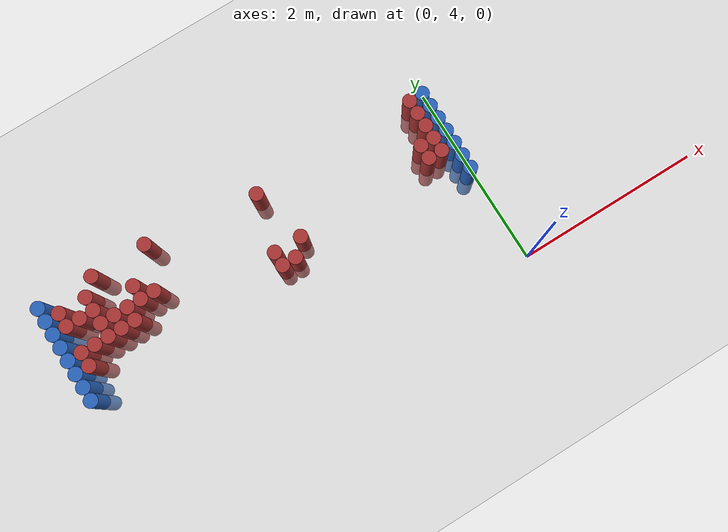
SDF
<sdf version="1.6">
 <world name="default">
  <model name="ground_plane">
   <static>1</static>
   <link name="link">
    <collision name="collision">
     <geometry><plane><normal>0 0 1</normal><size>100 100</size></plane></geometry>
     <surface><friction><ode><mu>100</mu><mu2>50</mu2></ode></friction></surface>
    </collision>
    <visual name="visual">
     <cast_shadows>0</cast_shadows>
     <geometry><plane><normal>0 0 1</normal><size>100 100</size></plane></geometry>
     <material>
      <script><uri>file://media/materials/scripts/gazebo.material</uri><name>Gazebo/Grey</name></script>
     </material>
    </visual>
   </link>
  </model>
  <model name="unit_cylinder_94">
   <static>1</static>
   <pose>-0.075000 5.025000 0.000000 0.000000 0.000000 0.000000</pose>
   <link name="link">
    <inertial>
     <mass>1</mass>
     <inertia><ixx>0.145833</ixx><ixy>0</ixy><ixz>0</ixz><iyy>0.145833</iyy><iyz>0</iyz><izz>0.125</izz></inertia>
    </inertial>
    <collision name="collision">
     <geometry><cylinder><radius>0.075000</radius><length>1</length></cylinder></geometry>
    </collision>
    <visual name="visual">
     <geometry><cylinder><radius>0.075000</radius><length>1</length></cylinder></geometry>
     <material>
      <ambient>0.152000 0.379000 0.720000 1</ambient>
      <diffuse>0.152000 0.379000 0.720000 1</diffuse>
     </material>
     <material>
      <script><name>Gazebo/Grey</name><uri>file://media/materials/scripts/gazebo.material</uri></script>
     </material>
    </visual>
   </link>
  </model>
  <model name="unit_cylinder_95">
   <static>1</static>
   <pose>-4.425000 5.025000 0.000000 0.000000 0.000000 0.000000</pose>
   <link name="link">
    <inertial>
     <mass>1</mass>
     <inertia><ixx>0.145833</ixx><ixy>0</ixy><ixz>0</ixz><iyy>0.145833</iyy><iyz>0</iyz><izz>0.125</izz></inertia>
    </inertial>
    <collision name="collision">
     <geometry><cylinder><radius>0.075000</radius><length>1</length></cylinder></geometry>
    </collision>
    <visual name="visual">
     <geometry><cylinder><radius>0.075000</radius><length>1</length></cylinder></geometry>
     <material>
      <ambient>0.152000 0.379000 0.720000 1</ambient>
      <diffuse>0.152000 0.379000 0.720000 1</diffuse>
     </material>
     <material>
      <script><name>Gazebo/Grey</name><uri>file://media/materials/scripts/gazebo.material</uri></script>
     </material>
    </visual>
   </link>
  </model>
  <model name="unit_cylinder_96">
   <static>1</static>
   <pose>-4.425000 5.175000 0.000000 0.000000 0.000000 0.000000</pose>
   <link name="link">
    <inertial>
     <mass>1</mass>
     <inertia><ixx>0.145833</ixx><ixy>0</ixy><ixz>0</ixz><iyy>0.145833</iyy><iyz>0</iyz><izz>0.125</izz></inertia>
    </inertial>
    <collision name="collision">
     <geometry><cylinder><radius>0.075000</radius><length>1</length></cylinder></geometry>
    </collision>
    <visual name="visual">
     <geometry><cylinder><radius>0.075000</radius><length>1</length></cylinder></geometry>
     <material>
      <ambient>0.152000 0.379000 0.720000 1</ambient>
      <diffuse>0.152000 0.379000 0.720000 1</diffuse>
     </material>
     <material>
      <script><name>Gazebo/Grey</name><uri>file://media/materials/scripts/gazebo.material</uri></script>
     </material>
    </visual>
   </link>
  </model>
  <model name="unit_cylinder_97">
   <static>1</static>
   <pose>-4.425000 5.325000 0.000000 0.000000 0.000000 0.000000</pose>
   <link name="link">
    <inertial>
     <mass>1</mass>
     <inertia><ixx>0.145833</ixx><ixy>0</ixy><ixz>0</ixz><iyy>0.145833</iyy><iyz>0</iyz><izz>0.125</izz></inertia>
    </inertial>
    <collision name="collision">
     <geometry><cylinder><radius>0.075000</radius><length>1</length></cylinder></geometry>
    </collision>
    <visual name="visual">
     <geometry><cylinder><radius>0.075000</radius><length>1</length></cylinder></geometry>
     <material>
      <ambient>0.152000 0.379000 0.720000 1</ambient>
      <diffuse>0.152000 0.379000 0.720000 1</diffuse>
     </material>
     <material>
      <script><name>Gazebo/Grey</name><uri>file://media/materials/scripts/gazebo.material</uri></script>
     </material>
    </visual>
   </link>
  </model>
  <model name="unit_cylinder_98">
   <static>1</static>
   <pose>-4.425000 5.475000 0.000000 0.000000 0.000000 0.000000</pose>
   <link name="link">
    <inertial>
     <mass>1</mass>
     <inertia><ixx>0.145833</ixx><ixy>0</ixy><ixz>0</ixz><iyy>0.145833</iyy><iyz>0</iyz><izz>0.125</izz></inertia>
    </inertial>
    <collision name="collision">
     <geometry><cylinder><radius>0.075000</radius><length>1</length></cylinder></geometry>
    </collision>
    <visual name="visual">
     <geometry><cylinder><radius>0.075000</radius><length>1</length></cylinder></geometry>
     <material>
      <ambient>0.152000 0.379000 0.720000 1</ambient>
      <diffuse>0.152000 0.379000 0.720000 1</diffuse>
     </material>
     <material>
      <script><name>Gazebo/Grey</name><uri>file://media/materials/scripts/gazebo.material</uri></script>
     </material>
    </visual>
   </link>
  </model>
  <model name="unit_cylinder_99">
   <static>1</static>
   <pose>-4.425000 5.625000 0.000000 0.000000 0.000000 0.000000</pose>
   <link name="link">
    <inertial>
     <mass>1</mass>
     <inertia><ixx>0.145833</ixx><ixy>0</ixy><ixz>0</ixz><iyy>0.145833</iyy><iyz>0</iyz><izz>0.125</izz></inertia>
    </inertial>
    <collision name="collision">
     <geometry><cylinder><radius>0.075000</radius><length>1</length></cylinder></geometry>
    </collision>
    <visual name="visual">
     <geometry><cylinder><radius>0.075000</radius><length>1</length></cylinder></geometry>
     <material>
      <ambient>0.152000 0.379000 0.720000 1</ambient>
      <diffuse>0.152000 0.379000 0.720000 1</diffuse>
     </material>
     <material>
      <script><name>Gazebo/Grey</name><uri>file://media/materials/scripts/gazebo.material</uri></script>
     </material>
    </visual>
   </link>
  </model>
  <model name="unit_cylinder_100">
   <static>1</static>
   <pose>-4.425000 5.775000 0.000000 0.000000 0.000000 0.000000</pose>
   <link name="link">
    <inertial>
     <mass>1</mass>
     <inertia><ixx>0.145833</ixx><ixy>0</ixy><ixz>0</ixz><iyy>0.145833</iyy><iyz>0</iyz><izz>0.125</izz></inertia>
    </inertial>
    <collision name="collision">
     <geometry><cylinder><radius>0.075000</radius><length>1</length></cylinder></geometry>
    </collision>
    <visual name="visual">
     <geometry><cylinder><radius>0.075000</radius><length>1</length></cylinder></geometry>
     <material>
      <ambient>0.152000 0.379000 0.720000 1</ambient>
      <diffuse>0.152000 0.379000 0.720000 1</diffuse>
     </material>
     <material>
      <script><name>Gazebo/Grey</name><uri>file://media/materials/scripts/gazebo.material</uri></script>
     </material>
    </visual>
   </link>
  </model>
  <model name="unit_cylinder_101">
   <static>1</static>
   <pose>-4.425000 5.925000 0.000000 0.000000 0.000000 0.000000</pose>
   <link name="link">
    <inertial>
     <mass>1</mass>
     <inertia><ixx>0.145833</ixx><ixy>0</ixy><ixz>0</ixz><iyy>0.145833</iyy><iyz>0</iyz><izz>0.125</izz></inertia>
    </inertial>
    <collision name="collision">
     <geometry><cylinder><radius>0.075000</radius><length>1</length></cylinder></geometry>
    </collision>
    <visual name="visual">
     <geometry><cylinder><radius>0.075000</radius><length>1</length></cylinder></geometry>
     <material>
      <ambient>0.152000 0.379000 0.720000 1</ambient>
      <diffuse>0.152000 0.379000 0.720000 1</diffuse>
     </material>
     <material>
      <script><name>Gazebo/Grey</name><uri>file://media/materials/scripts/gazebo.material</uri></script>
     </material>
    </visual>
   </link>
  </model>
  <model name="unit_cylinder_102">
   <static>1</static>
   <pose>-4.425000 6.075000 0.000000 0.000000 0.000000 0.000000</pose>
   <link name="link">
    <inertial>
     <mass>1</mass>
     <inertia><ixx>0.145833</ixx><ixy>0</ixy><ixz>0</ixz><iyy>0.145833</iyy><iyz>0</iyz><izz>0.125</izz></inertia>
    </inertial>
    <collision name="collision">
     <geometry><cylinder><radius>0.075000</radius><length>1</length></cylinder></geometry>
    </collision>
    <visual name="visual">
     <geometry><cylinder><radius>0.075000</radius><length>1</length></cylinder></geometry>
     <material>
      <ambient>0.152000 0.379000 0.720000 1</ambient>
      <diffuse>0.152000 0.379000 0.720000 1</diffuse>
     </material>
     <material>
      <script><name>Gazebo/Grey</name><uri>file://media/materials/scripts/gazebo.material</uri></script>
     </material>
    </visual>
   </link>
  </model>
  <model name="unit_cylinder_126">
   <static>1</static>
   <pose>-4.275000 5.325000 0.000000 0.000000 0.000000 0.000000</pose>
   <link name="link">
    <inertial>
     <mass>1</mass>
     <inertia><ixx>0.145833</ixx><ixy>0</ixy><ixz>0</ixz><iyy>0.145833</iyy><iyz>0</iyz><izz>0.125</izz></inertia>
    </inertial>
    <collision name="collision">
     <geometry><cylinder><radius>0.075000</radius><length>1</length></cylinder></geometry>
    </collision>
    <visual name="visual">
     <geometry><cylinder><radius>0.075000</radius><length>1</length></cylinder></geometry>
     <material>
      <ambient>0.648000 0.192000 0.192000 1</ambient>
      <diffuse>0.648000 0.192000 0.192000 1</diffuse>
     </material>
     <material>
      <script><name>Gazebo/Grey</name><uri>file://media/materials/scripts/gazebo.material</uri></script>
     </material>
    </visual>
   </link>
  </model>
  <model name="unit_cylinder_127">
   <static>1</static>
   <pose>-4.275000 5.475000 0.000000 0.000000 0.000000 0.000000</pose>
   <link name="link">
    <inertial>
     <mass>1</mass>
     <inertia><ixx>0.145833</ixx><ixy>0</ixy><ixz>0</ixz><iyy>0.145833</iyy><iyz>0</iyz><izz>0.125</izz></inertia>
    </inertial>
    <collision name="collision">
     <geometry><cylinder><radius>0.075000</radius><length>1</length></cylinder></geometry>
    </collision>
    <visual name="visual">
     <geometry><cylinder><radius>0.075000</radius><length>1</length></cylinder></geometry>
     <material>
      <ambient>0.648000 0.192000 0.192000 1</ambient>
      <diffuse>0.648000 0.192000 0.192000 1</diffuse>
     </material>
     <material>
      <script><name>Gazebo/Grey</name><uri>file://media/materials/scripts/gazebo.material</uri></script>
     </material>
    </visual>
   </link>
  </model>
  <model name="unit_cylinder_128">
   <static>1</static>
   <pose>-4.275000 5.775000 0.000000 0.000000 0.000000 0.000000</pose>
   <link name="link">
    <inertial>
     <mass>1</mass>
     <inertia><ixx>0.145833</ixx><ixy>0</ixy><ixz>0</ixz><iyy>0.145833</iyy><iyz>0</iyz><izz>0.125</izz></inertia>
    </inertial>
    <collision name="collision">
     <geometry><cylinder><radius>0.075000</radius><length>1</length></cylinder></geometry>
    </collision>
    <visual name="visual">
     <geometry><cylinder><radius>0.075000</radius><length>1</length></cylinder></geometry>
     <material>
      <ambient>0.648000 0.192000 0.192000 1</ambient>
      <diffuse>0.648000 0.192000 0.192000 1</diffuse>
     </material>
     <material>
      <script><name>Gazebo/Grey</name><uri>file://media/materials/scripts/gazebo.material</uri></script>
     </material>
    </visual>
   </link>
  </model>
  <model name="unit_cylinder_129">
   <static>1</static>
   <pose>-4.275000 5.925000 0.000000 0.000000 0.000000 0.000000</pose>
   <link name="link">
    <inertial>
     <mass>1</mass>
     <inertia><ixx>0.145833</ixx><ixy>0</ixy><ixz>0</ixz><iyy>0.145833</iyy><iyz>0</iyz><izz>0.125</izz></inertia>
    </inertial>
    <collision name="collision">
     <geometry><cylinder><radius>0.075000</radius><length>1</length></cylinder></geometry>
    </collision>
    <visual name="visual">
     <geometry><cylinder><radius>0.075000</radius><length>1</length></cylinder></geometry>
     <material>
      <ambient>0.648000 0.192000 0.192000 1</ambient>
      <diffuse>0.648000 0.192000 0.192000 1</diffuse>
     </material>
     <material>
      <script><name>Gazebo/Grey</name><uri>file://media/materials/scripts/gazebo.material</uri></script>
     </material>
    </visual>
   </link>
  </model>
  <model name="unit_cylinder_137">
   <static>1</static>
   <pose>-4.125000 5.475000 0.000000 0.000000 0.000000 0.000000</pose>
   <link name="link">
    <inertial>
     <mass>1</mass>
     <inertia><ixx>0.145833</ixx><ixy>0</ixy><ixz>0</ixz><iyy>0.145833</iyy><iyz>0</iyz><izz>0.125</izz></inertia>
    </inertial>
    <collision name="collision">
     <geometry><cylinder><radius>0.075000</radius><length>1</length></cylinder></geometry>
    </collision>
    <visual name="visual">
     <geometry><cylinder><radius>0.075000</radius><length>1</length></cylinder></geometry>
     <material>
      <ambient>0.648000 0.192000 0.192000 1</ambient>
      <diffuse>0.648000 0.192000 0.192000 1</diffuse>
     </material>
     <material>
      <script><name>Gazebo/Grey</name><uri>file://media/materials/scripts/gazebo.material</uri></script>
     </material>
    </visual>
   </link>
  </model>
  <model name="unit_cylinder_138">
   <static>1</static>
   <pose>-4.125000 5.775000 0.000000 0.000000 0.000000 0.000000</pose>
   <link name="link">
    <inertial>
     <mass>1</mass>
     <inertia><ixx>0.145833</ixx><ixy>0</ixy><ixz>0</ixz><iyy>0.145833</iyy><iyz>0</iyz><izz>0.125</izz></inertia>
    </inertial>
    <collision name="collision">
     <geometry><cylinder><radius>0.075000</radius><length>1</length></cylinder></geometry>
    </collision>
    <visual name="visual">
     <geometry><cylinder><radius>0.075000</radius><length>1</length></cylinder></geometry>
     <material>
      <ambient>0.648000 0.192000 0.192000 1</ambient>
      <diffuse>0.648000 0.192000 0.192000 1</diffuse>
     </material>
     <material>
      <script><name>Gazebo/Grey</name><uri>file://media/materials/scripts/gazebo.material</uri></script>
     </material>
    </visual>
   </link>
  </model>
  <model name="unit_cylinder_142">
   <static>1</static>
   <pose>-3.975000 5.475000 0.000000 0.000000 0.000000 0.000000</pose>
   <link name="link">
    <inertial>
     <mass>1</mass>
     <inertia><ixx>0.145833</ixx><ixy>0</ixy><ixz>0</ixz><iyy>0.145833</iyy><iyz>0</iyz><izz>0.125</izz></inertia>
    </inertial>
    <collision name="collision">
     <geometry><cylinder><radius>0.075000</radius><length>1</length></cylinder></geometry>
    </collision>
    <visual name="visual">
     <geometry><cylinder><radius>0.075000</radius><length>1</length></cylinder></geometry>
     <material>
      <ambient>0.648000 0.192000 0.192000 1</ambient>
      <diffuse>0.648000 0.192000 0.192000 1</diffuse>
     </material>
     <material>
      <script><name>Gazebo/Grey</name><uri>file://media/materials/scripts/gazebo.material</uri></script>
     </material>
    </visual>
   </link>
  </model>
  <model name="unit_cylinder_143">
   <static>1</static>
   <pose>-3.975000 5.625000 0.000000 0.000000 0.000000 0.000000</pose>
   <link name="link">
    <inertial>
     <mass>1</mass>
     <inertia><ixx>0.145833</ixx><ixy>0</ixy><ixz>0</ixz><iyy>0.145833</iyy><iyz>0</iyz><izz>0.125</izz></inertia>
    </inertial>
    <collision name="collision">
     <geometry><cylinder><radius>0.075000</radius><length>1</length></cylinder></geometry>
    </collision>
    <visual name="visual">
     <geometry><cylinder><radius>0.075000</radius><length>1</length></cylinder></geometry>
     <material>
      <ambient>0.648000 0.192000 0.192000 1</ambient>
      <diffuse>0.648000 0.192000 0.192000 1</diffuse>
     </material>
     <material>
      <script><name>Gazebo/Grey</name><uri>file://media/materials/scripts/gazebo.material</uri></script>
     </material>
    </visual>
   </link>
  </model>
  <model name="unit_cylinder_144">
   <static>1</static>
   <pose>-3.975000 5.775000 0.000000 0.000000 0.000000 0.000000</pose>
   <link name="link">
    <inertial>
     <mass>1</mass>
     <inertia><ixx>0.145833</ixx><ixy>0</ixy><ixz>0</ixz><iyy>0.145833</iyy><iyz>0</iyz><izz>0.125</izz></inertia>
    </inertial>
    <collision name="collision">
     <geometry><cylinder><radius>0.075000</radius><length>1</length></cylinder></geometry>
    </collision>
    <visual name="visual">
     <geometry><cylinder><radius>0.075000</radius><length>1</length></cylinder></geometry>
     <material>
      <ambient>0.648000 0.192000 0.192000 1</ambient>
      <diffuse>0.648000 0.192000 0.192000 1</diffuse>
     </material>
     <material>
      <script><name>Gazebo/Grey</name><uri>file://media/materials/scripts/gazebo.material</uri></script>
     </material>
    </visual>
   </link>
  </model>
  <model name="unit_cylinder_145">
   <static>1</static>
   <pose>-3.975000 5.925000 0.000000 0.000000 0.000000 0.000000</pose>
   <link name="link">
    <inertial>
     <mass>1</mass>
     <inertia><ixx>0.145833</ixx><ixy>0</ixy><ixz>0</ixz><iyy>0.145833</iyy><iyz>0</iyz><izz>0.125</izz></inertia>
    </inertial>
    <collision name="collision">
     <geometry><cylinder><radius>0.075000</radius><length>1</length></cylinder></geometry>
    </collision>
    <visual name="visual">
     <geometry><cylinder><radius>0.075000</radius><length>1</length></cylinder></geometry>
     <material>
      <ambient>0.648000 0.192000 0.192000 1</ambient>
      <diffuse>0.648000 0.192000 0.192000 1</diffuse>
     </material>
     <material>
      <script><name>Gazebo/Grey</name><uri>file://media/materials/scripts/gazebo.material</uri></script>
     </material>
    </visual>
   </link>
  </model>
  <model name="unit_cylinder_152">
   <static>1</static>
   <pose>-3.825000 5.475000 0.000000 0.000000 0.000000 0.000000</pose>
   <link name="link">
    <inertial>
     <mass>1</mass>
     <inertia><ixx>0.145833</ixx><ixy>0</ixy><ixz>0</ixz><iyy>0.145833</iyy><iyz>0</iyz><izz>0.125</izz></inertia>
    </inertial>
    <collision name="collision">
     <geometry><cylinder><radius>0.075000</radius><length>1</length></cylinder></geometry>
    </collision>
    <visual name="visual">
     <geometry><cylinder><radius>0.075000</radius><length>1</length></cylinder></geometry>
     <material>
      <ambient>0.648000 0.192000 0.192000 1</ambient>
      <diffuse>0.648000 0.192000 0.192000 1</diffuse>
     </material>
     <material>
      <script><name>Gazebo/Grey</name><uri>file://media/materials/scripts/gazebo.material</uri></script>
     </material>
    </visual>
   </link>
  </model>
  <model name="unit_cylinder_153">
   <static>1</static>
   <pose>-3.825000 5.625000 0.000000 0.000000 0.000000 0.000000</pose>
   <link name="link">
    <inertial>
     <mass>1</mass>
     <inertia><ixx>0.145833</ixx><ixy>0</ixy><ixz>0</ixz><iyy>0.145833</iyy><iyz>0</iyz><izz>0.125</izz></inertia>
    </inertial>
    <collision name="collision">
     <geometry><cylinder><radius>0.075000</radius><length>1</length></cylinder></geometry>
    </collision>
    <visual name="visual">
     <geometry><cylinder><radius>0.075000</radius><length>1</length></cylinder></geometry>
     <material>
      <ambient>0.648000 0.192000 0.192000 1</ambient>
      <diffuse>0.648000 0.192000 0.192000 1</diffuse>
     </material>
     <material>
      <script><name>Gazebo/Grey</name><uri>file://media/materials/scripts/gazebo.material</uri></script>
     </material>
    </visual>
   </link>
  </model>
  <model name="unit_cylinder_154">
   <static>1</static>
   <pose>-3.825000 6.075000 0.000000 0.000000 0.000000 0.000000</pose>
   <link name="link">
    <inertial>
     <mass>1</mass>
     <inertia><ixx>0.145833</ixx><ixy>0</ixy><ixz>0</ixz><iyy>0.145833</iyy><iyz>0</iyz><izz>0.125</izz></inertia>
    </inertial>
    <collision name="collision">
     <geometry><cylinder><radius>0.075000</radius><length>1</length></cylinder></geometry>
    </collision>
    <visual name="visual">
     <geometry><cylinder><radius>0.075000</radius><length>1</length></cylinder></geometry>
     <material>
      <ambient>0.648000 0.192000 0.192000 1</ambient>
      <diffuse>0.648000 0.192000 0.192000 1</diffuse>
     </material>
     <material>
      <script><name>Gazebo/Grey</name><uri>file://media/materials/scripts/gazebo.material</uri></script>
     </material>
    </visual>
   </link>
  </model>
  <model name="unit_cylinder_161">
   <static>1</static>
   <pose>-3.675000 5.475000 0.000000 0.000000 0.000000 0.000000</pose>
   <link name="link">
    <inertial>
     <mass>1</mass>
     <inertia><ixx>0.145833</ixx><ixy>0</ixy><ixz>0</ixz><iyy>0.145833</iyy><iyz>0</iyz><izz>0.125</izz></inertia>
    </inertial>
    <collision name="collision">
     <geometry><cylinder><radius>0.075000</radius><length>1</length></cylinder></geometry>
    </collision>
    <visual name="visual">
     <geometry><cylinder><radius>0.075000</radius><length>1</length></cylinder></geometry>
     <material>
      <ambient>0.648000 0.192000 0.192000 1</ambient>
      <diffuse>0.648000 0.192000 0.192000 1</diffuse>
     </material>
     <material>
      <script><name>Gazebo/Grey</name><uri>file://media/materials/scripts/gazebo.material</uri></script>
     </material>
    </visual>
   </link>
  </model>
  <model name="unit_cylinder_162">
   <static>1</static>
   <pose>-3.675000 5.625000 0.000000 0.000000 0.000000 0.000000</pose>
   <link name="link">
    <inertial>
     <mass>1</mass>
     <inertia><ixx>0.145833</ixx><ixy>0</ixy><ixz>0</ixz><iyy>0.145833</iyy><iyz>0</iyz><izz>0.125</izz></inertia>
    </inertial>
    <collision name="collision">
     <geometry><cylinder><radius>0.075000</radius><length>1</length></cylinder></geometry>
    </collision>
    <visual name="visual">
     <geometry><cylinder><radius>0.075000</radius><length>1</length></cylinder></geometry>
     <material>
      <ambient>0.648000 0.192000 0.192000 1</ambient>
      <diffuse>0.648000 0.192000 0.192000 1</diffuse>
     </material>
     <material>
      <script><name>Gazebo/Grey</name><uri>file://media/materials/scripts/gazebo.material</uri></script>
     </material>
    </visual>
   </link>
  </model>
  <model name="unit_cylinder_165">
   <static>1</static>
   <pose>-3.525000 5.625000 0.000000 0.000000 0.000000 0.000000</pose>
   <link name="link">
    <inertial>
     <mass>1</mass>
     <inertia><ixx>0.145833</ixx><ixy>0</ixy><ixz>0</ixz><iyy>0.145833</iyy><iyz>0</iyz><izz>0.125</izz></inertia>
    </inertial>
    <collision name="collision">
     <geometry><cylinder><radius>0.075000</radius><length>1</length></cylinder></geometry>
    </collision>
    <visual name="visual">
     <geometry><cylinder><radius>0.075000</radius><length>1</length></cylinder></geometry>
     <material>
      <ambient>0.648000 0.192000 0.192000 1</ambient>
      <diffuse>0.648000 0.192000 0.192000 1</diffuse>
     </material>
     <material>
      <script><name>Gazebo/Grey</name><uri>file://media/materials/scripts/gazebo.material</uri></script>
     </material>
    </visual>
   </link>
  </model>
  <model name="unit_cylinder_166">
   <static>1</static>
   <pose>-3.525000 5.775000 0.000000 0.000000 0.000000 0.000000</pose>
   <link name="link">
    <inertial>
     <mass>1</mass>
     <inertia><ixx>0.145833</ixx><ixy>0</ixy><ixz>0</ixz><iyy>0.145833</iyy><iyz>0</iyz><izz>0.125</izz></inertia>
    </inertial>
    <collision name="collision">
     <geometry><cylinder><radius>0.075000</radius><length>1</length></cylinder></geometry>
    </collision>
    <visual name="visual">
     <geometry><cylinder><radius>0.075000</radius><length>1</length></cylinder></geometry>
     <material>
      <ambient>0.648000 0.192000 0.192000 1</ambient>
      <diffuse>0.648000 0.192000 0.192000 1</diffuse>
     </material>
     <material>
      <script><name>Gazebo/Grey</name><uri>file://media/materials/scripts/gazebo.material</uri></script>
     </material>
    </visual>
   </link>
  </model>
  <model name="unit_cylinder_172">
   <static>1</static>
   <pose>-3.375000 5.625000 0.000000 0.000000 0.000000 0.000000</pose>
   <link name="link">
    <inertial>
     <mass>1</mass>
     <inertia><ixx>0.145833</ixx><ixy>0</ixy><ixz>0</ixz><iyy>0.145833</iyy><iyz>0</iyz><izz>0.125</izz></inertia>
    </inertial>
    <collision name="collision">
     <geometry><cylinder><radius>0.075000</radius><length>1</length></cylinder></geometry>
    </collision>
    <visual name="visual">
     <geometry><cylinder><radius>0.075000</radius><length>1</length></cylinder></geometry>
     <material>
      <ambient>0.648000 0.192000 0.192000 1</ambient>
      <diffuse>0.648000 0.192000 0.192000 1</diffuse>
     </material>
     <material>
      <script><name>Gazebo/Grey</name><uri>file://media/materials/scripts/gazebo.material</uri></script>
     </material>
    </visual>
   </link>
  </model>
  <model name="unit_cylinder_176">
   <static>1</static>
   <pose>-3.225000 6.075000 0.000000 0.000000 0.000000 0.000000</pose>
   <link name="link">
    <inertial>
     <mass>1</mass>
     <inertia><ixx>0.145833</ixx><ixy>0</ixy><ixz>0</ixz><iyy>0.145833</iyy><iyz>0</iyz><izz>0.125</izz></inertia>
    </inertial>
    <collision name="collision">
     <geometry><cylinder><radius>0.075000</radius><length>1</length></cylinder></geometry>
    </collision>
    <visual name="visual">
     <geometry><cylinder><radius>0.075000</radius><length>1</length></cylinder></geometry>
     <material>
      <ambient>0.648000 0.192000 0.192000 1</ambient>
      <diffuse>0.648000 0.192000 0.192000 1</diffuse>
     </material>
     <material>
      <script><name>Gazebo/Grey</name><uri>file://media/materials/scripts/gazebo.material</uri></script>
     </material>
    </visual>
   </link>
  </model>
  <model name="unit_cylinder_198">
   <static>1</static>
   <pose>-2.175000 5.175000 0.000000 0.000000 0.000000 0.000000</pose>
   <link name="link">
    <inertial>
     <mass>1</mass>
     <inertia><ixx>0.145833</ixx><ixy>0</ixy><ixz>0</ixz><iyy>0.145833</iyy><iyz>0</iyz><izz>0.125</izz></inertia>
    </inertial>
    <collision name="collision">
     <geometry><cylinder><radius>0.075000</radius><length>1</length></cylinder></geometry>
    </collision>
    <visual name="visual">
     <geometry><cylinder><radius>0.075000</radius><length>1</length></cylinder></geometry>
     <material>
      <ambient>0.648000 0.192000 0.192000 1</ambient>
      <diffuse>0.648000 0.192000 0.192000 1</diffuse>
     </material>
     <material>
      <script><name>Gazebo/Grey</name><uri>file://media/materials/scripts/gazebo.material</uri></script>
     </material>
    </visual>
   </link>
  </model>
  <model name="unit_cylinder_199">
   <static>1</static>
   <pose>-2.175000 5.325000 0.000000 0.000000 0.000000 0.000000</pose>
   <link name="link">
    <inertial>
     <mass>1</mass>
     <inertia><ixx>0.145833</ixx><ixy>0</ixy><ixz>0</ixz><iyy>0.145833</iyy><iyz>0</iyz><izz>0.125</izz></inertia>
    </inertial>
    <collision name="collision">
     <geometry><cylinder><radius>0.075000</radius><length>1</length></cylinder></geometry>
    </collision>
    <visual name="visual">
     <geometry><cylinder><radius>0.075000</radius><length>1</length></cylinder></geometry>
     <material>
      <ambient>0.648000 0.192000 0.192000 1</ambient>
      <diffuse>0.648000 0.192000 0.192000 1</diffuse>
     </material>
     <material>
      <script><name>Gazebo/Grey</name><uri>file://media/materials/scripts/gazebo.material</uri></script>
     </material>
    </visual>
   </link>
  </model>
  <model name="unit_cylinder_201">
   <static>1</static>
   <pose>-2.025000 5.175000 0.000000 0.000000 0.000000 0.000000</pose>
   <link name="link">
    <inertial>
     <mass>1</mass>
     <inertia><ixx>0.145833</ixx><ixy>0</ixy><ixz>0</ixz><iyy>0.145833</iyy><iyz>0</iyz><izz>0.125</izz></inertia>
    </inertial>
    <collision name="collision">
     <geometry><cylinder><radius>0.075000</radius><length>1</length></cylinder></geometry>
    </collision>
    <visual name="visual">
     <geometry><cylinder><radius>0.075000</radius><length>1</length></cylinder></geometry>
     <material>
      <ambient>0.648000 0.192000 0.192000 1</ambient>
      <diffuse>0.648000 0.192000 0.192000 1</diffuse>
     </material>
     <material>
      <script><name>Gazebo/Grey</name><uri>file://media/materials/scripts/gazebo.material</uri></script>
     </material>
    </visual>
   </link>
  </model>
  <model name="unit_cylinder_202">
   <static>1</static>
   <pose>-2.025000 5.925000 0.000000 0.000000 0.000000 0.000000</pose>
   <link name="link">
    <inertial>
     <mass>1</mass>
     <inertia><ixx>0.145833</ixx><ixy>0</ixy><ixz>0</ixz><iyy>0.145833</iyy><iyz>0</iyz><izz>0.125</izz></inertia>
    </inertial>
    <collision name="collision">
     <geometry><cylinder><radius>0.075000</radius><length>1</length></cylinder></geometry>
    </collision>
    <visual name="visual">
     <geometry><cylinder><radius>0.075000</radius><length>1</length></cylinder></geometry>
     <material>
      <ambient>0.648000 0.192000 0.192000 1</ambient>
      <diffuse>0.648000 0.192000 0.192000 1</diffuse>
     </material>
     <material>
      <script><name>Gazebo/Grey</name><uri>file://media/materials/scripts/gazebo.material</uri></script>
     </material>
    </visual>
   </link>
  </model>
  <model name="unit_cylinder_204">
   <static>1</static>
   <pose>-1.875000 5.325000 0.000000 0.000000 0.000000 0.000000</pose>
   <link name="link">
    <inertial>
     <mass>1</mass>
     <inertia><ixx>0.145833</ixx><ixy>0</ixy><ixz>0</ixz><iyy>0.145833</iyy><iyz>0</iyz><izz>0.125</izz></inertia>
    </inertial>
    <collision name="collision">
     <geometry><cylinder><radius>0.075000</radius><length>1</length></cylinder></geometry>
    </collision>
    <visual name="visual">
     <geometry><cylinder><radius>0.075000</radius><length>1</length></cylinder></geometry>
     <material>
      <ambient>0.648000 0.192000 0.192000 1</ambient>
      <diffuse>0.648000 0.192000 0.192000 1</diffuse>
     </material>
     <material>
      <script><name>Gazebo/Grey</name><uri>file://media/materials/scripts/gazebo.material</uri></script>
     </material>
    </visual>
   </link>
  </model>
  <model name="unit_cylinder_222">
   <static>1</static>
   <pose>-0.375000 5.325000 0.000000 0.000000 0.000000 0.000000</pose>
   <link name="link">
    <inertial>
     <mass>1</mass>
     <inertia><ixx>0.145833</ixx><ixy>0</ixy><ixz>0</ixz><iyy>0.145833</iyy><iyz>0</iyz><izz>0.125</izz></inertia>
    </inertial>
    <collision name="collision">
     <geometry><cylinder><radius>0.075000</radius><length>1</length></cylinder></geometry>
    </collision>
    <visual name="visual">
     <geometry><cylinder><radius>0.075000</radius><length>1</length></cylinder></geometry>
     <material>
      <ambient>0.648000 0.192000 0.192000 1</ambient>
      <diffuse>0.648000 0.192000 0.192000 1</diffuse>
     </material>
     <material>
      <script><name>Gazebo/Grey</name><uri>file://media/materials/scripts/gazebo.material</uri></script>
     </material>
    </visual>
   </link>
  </model>
  <model name="unit_cylinder_223">
   <static>1</static>
   <pose>-0.375000 5.475000 0.000000 0.000000 0.000000 0.000000</pose>
   <link name="link">
    <inertial>
     <mass>1</mass>
     <inertia><ixx>0.145833</ixx><ixy>0</ixy><ixz>0</ixz><iyy>0.145833</iyy><iyz>0</iyz><izz>0.125</izz></inertia>
    </inertial>
    <collision name="collision">
     <geometry><cylinder><radius>0.075000</radius><length>1</length></cylinder></geometry>
    </collision>
    <visual name="visual">
     <geometry><cylinder><radius>0.075000</radius><length>1</length></cylinder></geometry>
     <material>
      <ambient>0.648000 0.192000 0.192000 1</ambient>
      <diffuse>0.648000 0.192000 0.192000 1</diffuse>
     </material>
     <material>
      <script><name>Gazebo/Grey</name><uri>file://media/materials/scripts/gazebo.material</uri></script>
     </material>
    </visual>
   </link>
  </model>
  <model name="unit_cylinder_230">
   <static>1</static>
   <pose>-0.225000 5.325000 0.000000 0.000000 0.000000 0.000000</pose>
   <link name="link">
    <inertial>
     <mass>1</mass>
     <inertia><ixx>0.145833</ixx><ixy>0</ixy><ixz>0</ixz><iyy>0.145833</iyy><iyz>0</iyz><izz>0.125</izz></inertia>
    </inertial>
    <collision name="collision">
     <geometry><cylinder><radius>0.075000</radius><length>1</length></cylinder></geometry>
    </collision>
    <visual name="visual">
     <geometry><cylinder><radius>0.075000</radius><length>1</length></cylinder></geometry>
     <material>
      <ambient>0.648000 0.192000 0.192000 1</ambient>
      <diffuse>0.648000 0.192000 0.192000 1</diffuse>
     </material>
     <material>
      <script><name>Gazebo/Grey</name><uri>file://media/materials/scripts/gazebo.material</uri></script>
     </material>
    </visual>
   </link>
  </model>
  <model name="unit_cylinder_231">
   <static>1</static>
   <pose>-0.225000 5.475000 0.000000 0.000000 0.000000 0.000000</pose>
   <link name="link">
    <inertial>
     <mass>1</mass>
     <inertia><ixx>0.145833</ixx><ixy>0</ixy><ixz>0</ixz><iyy>0.145833</iyy><iyz>0</iyz><izz>0.125</izz></inertia>
    </inertial>
    <collision name="collision">
     <geometry><cylinder><radius>0.075000</radius><length>1</length></cylinder></geometry>
    </collision>
    <visual name="visual">
     <geometry><cylinder><radius>0.075000</radius><length>1</length></cylinder></geometry>
     <material>
      <ambient>0.648000 0.192000 0.192000 1</ambient>
      <diffuse>0.648000 0.192000 0.192000 1</diffuse>
     </material>
     <material>
      <script><name>Gazebo/Grey</name><uri>file://media/materials/scripts/gazebo.material</uri></script>
     </material>
    </visual>
   </link>
  </model>
  <model name="unit_cylinder_232">
   <static>1</static>
   <pose>-0.225000 5.625000 0.000000 0.000000 0.000000 0.000000</pose>
   <link name="link">
    <inertial>
     <mass>1</mass>
     <inertia><ixx>0.145833</ixx><ixy>0</ixy><ixz>0</ixz><iyy>0.145833</iyy><iyz>0</iyz><izz>0.125</izz></inertia>
    </inertial>
    <collision name="collision">
     <geometry><cylinder><radius>0.075000</radius><length>1</length></cylinder></geometry>
    </collision>
    <visual name="visual">
     <geometry><cylinder><radius>0.075000</radius><length>1</length></cylinder></geometry>
     <material>
      <ambient>0.648000 0.192000 0.192000 1</ambient>
      <diffuse>0.648000 0.192000 0.192000 1</diffuse>
     </material>
     <material>
      <script><name>Gazebo/Grey</name><uri>file://media/materials/scripts/gazebo.material</uri></script>
     </material>
    </visual>
   </link>
  </model>
  <model name="unit_cylinder_233">
   <static>1</static>
   <pose>-0.225000 5.775000 0.000000 0.000000 0.000000 0.000000</pose>
   <link name="link">
    <inertial>
     <mass>1</mass>
     <inertia><ixx>0.145833</ixx><ixy>0</ixy><ixz>0</ixz><iyy>0.145833</iyy><iyz>0</iyz><izz>0.125</izz></inertia>
    </inertial>
    <collision name="collision">
     <geometry><cylinder><radius>0.075000</radius><length>1</length></cylinder></geometry>
    </collision>
    <visual name="visual">
     <geometry><cylinder><radius>0.075000</radius><length>1</length></cylinder></geometry>
     <material>
      <ambient>0.648000 0.192000 0.192000 1</ambient>
      <diffuse>0.648000 0.192000 0.192000 1</diffuse>
     </material>
     <material>
      <script><name>Gazebo/Grey</name><uri>file://media/materials/scripts/gazebo.material</uri></script>
     </material>
    </visual>
   </link>
  </model>
  <model name="unit_cylinder_234">
   <static>1</static>
   <pose>-0.225000 5.925000 0.000000 0.000000 0.000000 0.000000</pose>
   <link name="link">
    <inertial>
     <mass>1</mass>
     <inertia><ixx>0.145833</ixx><ixy>0</ixy><ixz>0</ixz><iyy>0.145833</iyy><iyz>0</iyz><izz>0.125</izz></inertia>
    </inertial>
    <collision name="collision">
     <geometry><cylinder><radius>0.075000</radius><length>1</length></cylinder></geometry>
    </collision>
    <visual name="visual">
     <geometry><cylinder><radius>0.075000</radius><length>1</length></cylinder></geometry>
     <material>
      <ambient>0.648000 0.192000 0.192000 1</ambient>
      <diffuse>0.648000 0.192000 0.192000 1</diffuse>
     </material>
     <material>
      <script><name>Gazebo/Grey</name><uri>file://media/materials/scripts/gazebo.material</uri></script>
     </material>
    </visual>
   </link>
  </model>
  <model name="unit_cylinder_249">
   <static>1</static>
   <pose>-0.075000 5.175000 0.000000 0.000000 0.000000 0.000000</pose>
   <link name="link">
    <inertial>
     <mass>1</mass>
     <inertia><ixx>0.145833</ixx><ixy>0</ixy><ixz>0</ixz><iyy>0.145833</iyy><iyz>0</iyz><izz>0.125</izz></inertia>
    </inertial>
    <collision name="collision">
     <geometry><cylinder><radius>0.075000</radius><length>1</length></cylinder></geometry>
    </collision>
    <visual name="visual">
     <geometry><cylinder><radius>0.075000</radius><length>1</length></cylinder></geometry>
     <material>
      <ambient>0.152000 0.379000 0.720000 1</ambient>
      <diffuse>0.152000 0.379000 0.720000 1</diffuse>
     </material>
     <material>
      <script><name>Gazebo/Grey</name><uri>file://media/materials/scripts/gazebo.material</uri></script>
     </material>
    </visual>
   </link>
  </model>
  <model name="unit_cylinder_250">
   <static>1</static>
   <pose>-0.075000 5.325000 0.000000 0.000000 0.000000 0.000000</pose>
   <link name="link">
    <inertial>
     <mass>1</mass>
     <inertia><ixx>0.145833</ixx><ixy>0</ixy><ixz>0</ixz><iyy>0.145833</iyy><iyz>0</iyz><izz>0.125</izz></inertia>
    </inertial>
    <collision name="collision">
     <geometry><cylinder><radius>0.075000</radius><length>1</length></cylinder></geometry>
    </collision>
    <visual name="visual">
     <geometry><cylinder><radius>0.075000</radius><length>1</length></cylinder></geometry>
     <material>
      <ambient>0.152000 0.379000 0.720000 1</ambient>
      <diffuse>0.152000 0.379000 0.720000 1</diffuse>
     </material>
     <material>
      <script><name>Gazebo/Grey</name><uri>file://media/materials/scripts/gazebo.material</uri></script>
     </material>
    </visual>
   </link>
  </model>
  <model name="unit_cylinder_251">
   <static>1</static>
   <pose>-0.075000 5.475000 0.000000 0.000000 0.000000 0.000000</pose>
   <link name="link">
    <inertial>
     <mass>1</mass>
     <inertia><ixx>0.145833</ixx><ixy>0</ixy><ixz>0</ixz><iyy>0.145833</iyy><iyz>0</iyz><izz>0.125</izz></inertia>
    </inertial>
    <collision name="collision">
     <geometry><cylinder><radius>0.075000</radius><length>1</length></cylinder></geometry>
    </collision>
    <visual name="visual">
     <geometry><cylinder><radius>0.075000</radius><length>1</length></cylinder></geometry>
     <material>
      <ambient>0.152000 0.379000 0.720000 1</ambient>
      <diffuse>0.152000 0.379000 0.720000 1</diffuse>
     </material>
     <material>
      <script><name>Gazebo/Grey</name><uri>file://media/materials/scripts/gazebo.material</uri></script>
     </material>
    </visual>
   </link>
  </model>
  <model name="unit_cylinder_252">
   <static>1</static>
   <pose>-0.075000 5.625000 0.000000 0.000000 0.000000 0.000000</pose>
   <link name="link">
    <inertial>
     <mass>1</mass>
     <inertia><ixx>0.145833</ixx><ixy>0</ixy><ixz>0</ixz><iyy>0.145833</iyy><iyz>0</iyz><izz>0.125</izz></inertia>
    </inertial>
    <collision name="collision">
     <geometry><cylinder><radius>0.075000</radius><length>1</length></cylinder></geometry>
    </collision>
    <visual name="visual">
     <geometry><cylinder><radius>0.075000</radius><length>1</length></cylinder></geometry>
     <material>
      <ambient>0.152000 0.379000 0.720000 1</ambient>
      <diffuse>0.152000 0.379000 0.720000 1</diffuse>
     </material>
     <material>
      <script><name>Gazebo/Grey</name><uri>file://media/materials/scripts/gazebo.material</uri></script>
     </material>
    </visual>
   </link>
  </model>
  <model name="unit_cylinder_253">
   <static>1</static>
   <pose>-0.075000 5.775000 0.000000 0.000000 0.000000 0.000000</pose>
   <link name="link">
    <inertial>
     <mass>1</mass>
     <inertia><ixx>0.145833</ixx><ixy>0</ixy><ixz>0</ixz><iyy>0.145833</iyy><iyz>0</iyz><izz>0.125</izz></inertia>
    </inertial>
    <collision name="collision">
     <geometry><cylinder><radius>0.075000</radius><length>1</length></cylinder></geometry>
    </collision>
    <visual name="visual">
     <geometry><cylinder><radius>0.075000</radius><length>1</length></cylinder></geometry>
     <material>
      <ambient>0.152000 0.379000 0.720000 1</ambient>
      <diffuse>0.152000 0.379000 0.720000 1</diffuse>
     </material>
     <material>
      <script><name>Gazebo/Grey</name><uri>file://media/materials/scripts/gazebo.material</uri></script>
     </material>
    </visual>
   </link>
  </model>
  <model name="unit_cylinder_254">
   <static>1</static>
   <pose>-0.075000 5.925000 0.000000 0.000000 0.000000 0.000000</pose>
   <link name="link">
    <inertial>
     <mass>1</mass>
     <inertia><ixx>0.145833</ixx><ixy>0</ixy><ixz>0</ixz><iyy>0.145833</iyy><iyz>0</iyz><izz>0.125</izz></inertia>
    </inertial>
    <collision name="collision">
     <geometry><cylinder><radius>0.075000</radius><length>1</length></cylinder></geometry>
    </collision>
    <visual name="visual">
     <geometry><cylinder><radius>0.075000</radius><length>1</length></cylinder></geometry>
     <material>
      <ambient>0.152000 0.379000 0.720000 1</ambient>
      <diffuse>0.152000 0.379000 0.720000 1</diffuse>
     </material>
     <material>
      <script><name>Gazebo/Grey</name><uri>file://media/materials/scripts/gazebo.material</uri></script>
     </material>
    </visual>
   </link>
  </model>
 </world>
</sdf>
